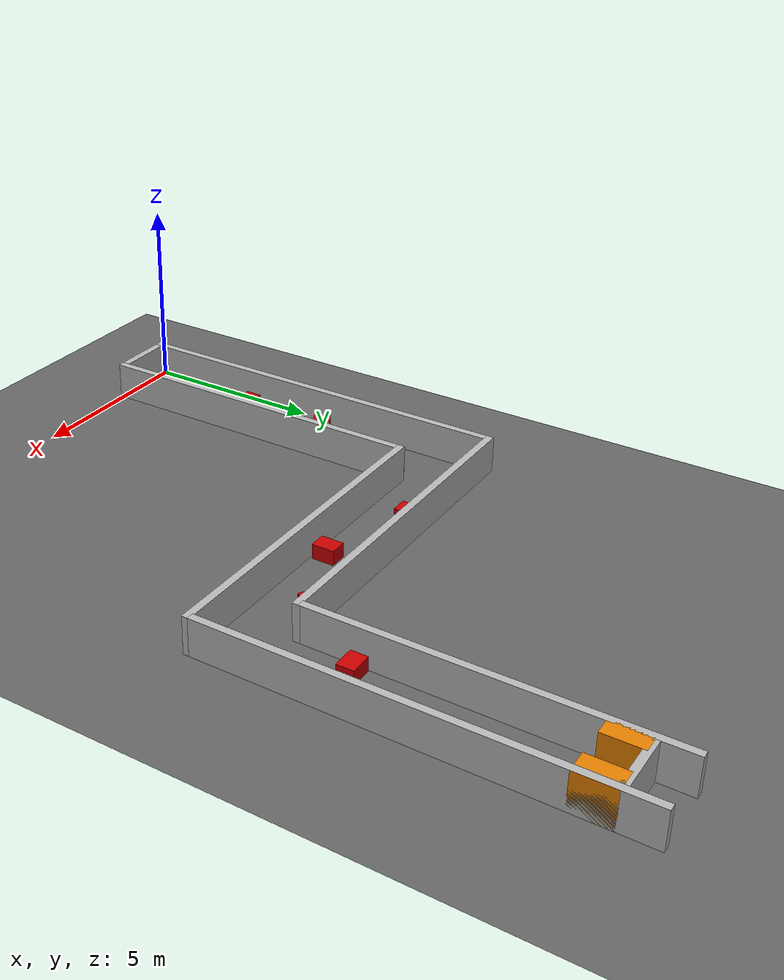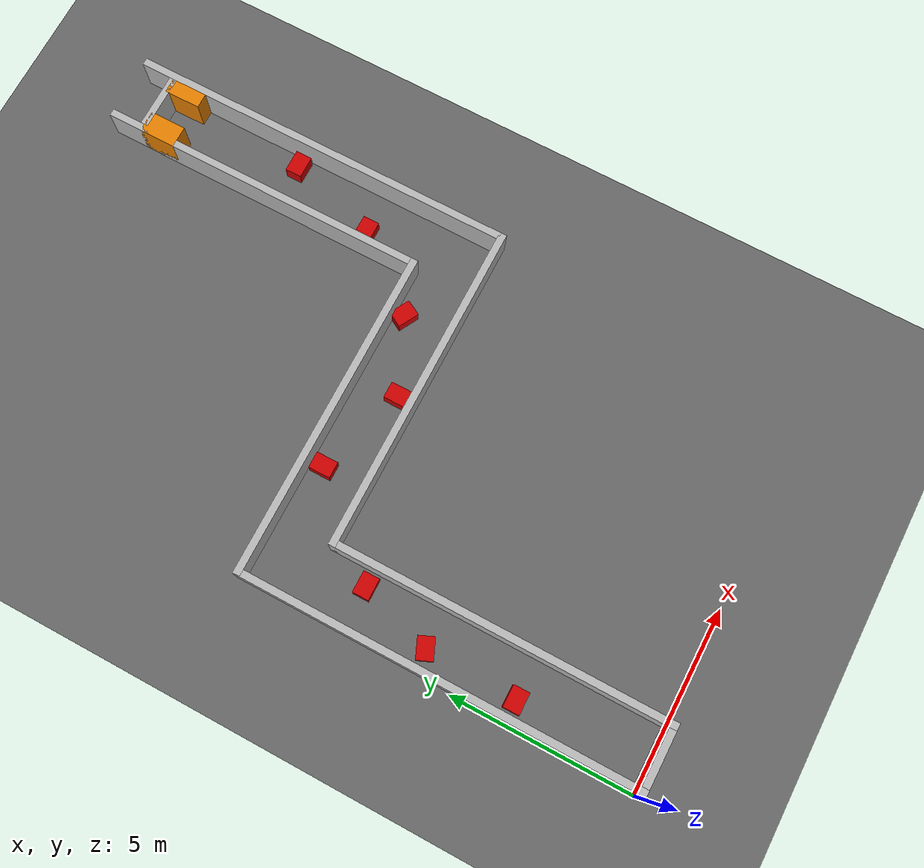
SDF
<?xml version="1.0" ?>
<sdf version="1.8">
  <world name="exam_track">
    <physics name="1ms" type="ignored">
      <max_step_size>0.001</max_step_size>
      <real_time_factor>1.0</real_time_factor>
    </physics>

    <light type="directional" name="sun">
      <cast_shadows>true</cast_shadows>
      <pose>0 0 10 0 0 0</pose>
      <diffuse>0.8 0.8 0.8 1</diffuse>
      <specular>0.2 0.2 0.2 1</specular>
      <direction>-0.5 0.1 -0.9</direction>
    </light>

    <model name="ground_plane">
      <static>true</static>
      <link name="link">
        <collision name="collision"><geometry><plane><normal>0 0 1</normal></plane></geometry></collision>
        <visual name="visual">
          <geometry><plane><normal>0 0 1</normal><size>50 50</size></plane></geometry>
          <material><ambient>0.4 0.4 0.4 1</ambient><diffuse>0.4 0.4 0.4 1</diffuse></material>
        </visual>
      </link>
    </model>

    <model name="wall_start">
      <static>true</static>
      <pose>1.0 0.0 0.5 0 0 0</pose>
      <link name="link">
        <collision name="c"><geometry><box><size>1.5 0.2 1</size></box></geometry></collision>
        <visual name="v"><geometry><box><size>1.5 0.2 1</size></box></geometry></visual>
      </link>
    </model>

    <model name="wall_end">
      <static>true</static>
      <pose>10.0 19.0 0.5 0 0 0</pose>
      <link name="link">
        <collision name="c"><geometry><box><size>1.5 0.2 1</size></box></geometry></collision>
        <visual name="v"><geometry><box><size>1.5 0.2 1</size></box></geometry></visual>
      </link>
    </model>

    <model name="wall_1_left">
      <static>true</static>
      <pose>0.15 5.425 0.5 0 0 0</pose>
      <link name="link">
        <collision name="c"><geometry><box><size>0.2 11.05 1</size></box></geometry></collision>
        <visual name="v"><geometry><box><size>0.2 11.05 1</size></box></geometry></visual>
      </link>
    </model>

    <model name="wall_1_right">
      <static>true</static>
      <pose>1.85 4.575 0.5 0 0 0</pose>
      <link name="link">
        <collision name="c"><geometry><box><size>0.2 9.35 1</size></box></geometry></collision>
        <visual name="v"><geometry><box><size>0.2 9.35 1</size></box></geometry></visual>
      </link>
    </model>

    <model name="wall_2_top">
      <static>true</static>
      <pose>4.65 10.85 0.5 0 0 0</pose>
      <link name="link">
        <collision name="c"><geometry><box><size>9.2 0.2 1</size></box></geometry></collision>
        <visual name="v"><geometry><box><size>9.2 0.2 1</size></box></geometry></visual>
      </link>
    </model>

    <model name="wall_2_bottom">
      <static>true</static>
      <pose>6.35 9.15 0.5 0 0 0</pose>
      <link name="link">
        <collision name="c"><geometry><box><size>9.2 0.2 1</size></box></geometry></collision>
        <visual name="v"><geometry><box><size>9.2 0.2 1</size></box></geometry></visual>
      </link>
    </model>

    <model name="wall_3_left">
      <static>true</static>
      <pose>9.15 15.425 0.5 0 0 0</pose>
      <link name="link">
        <collision name="c"><geometry><box><size>0.2 9.05 1</size></box></geometry></collision>
        <visual name="v"><geometry><box><size>0.2 9.05 1</size></box></geometry></visual>
      </link>
    </model>

    <model name="wall_3_right">
      <static>true</static>
      <pose>10.85 14.575 0.5 0 0 0</pose>
      <link name="link">
        <collision name="c"><geometry><box><size>0.2 10.75 1</size></box></geometry></collision>
        <visual name="v"><geometry><box><size>0.2 10.75 1</size></box></geometry></visual>
      </link>
    </model>

    <model name="obs_1_left">
      <static>true</static>
      <pose>0.65 3.5 0.2 0 0 0</pose>
      <link name="link">
        <collision name="c"><geometry><box><size>0.6 0.45 0.4</size></box></geometry></collision>
        <visual name="v"><geometry><box><size>0.6 0.45 0.4</size></box></geometry><material><ambient>0.8 0 0 1</ambient><diffuse>0.8 0 0 1</diffuse></material></visual>
      </link>
    </model>

    <model name="obs_2_center_rot">
      <static>true</static>
      <pose>0.7 6.0 0.2 0 0 0.4</pose>
      <link name="link">
        <collision name="c"><geometry><box><size>0.6 0.45 0.4</size></box></geometry></collision>
        <visual name="v"><geometry><box><size>0.6 0.45 0.4</size></box></geometry><material><ambient>0.8 0 0 1</ambient><diffuse>0.8 0 0 1</diffuse></material></visual>
      </link>
    </model>

    <model name="obs_3_right">
      <static>true</static>
      <pose>1.35 8.0 0.2 0 0 0</pose>
      <link name="link">
        <collision name="c"><geometry><box><size>0.6 0.45 0.4</size></box></geometry></collision>
        <visual name="v"><geometry><box><size>0.6 0.45 0.4</size></box></geometry><material><ambient>0.8 0 0 1</ambient><diffuse>0.8 0 0 1</diffuse></material></visual>
      </link>
    </model>

    <model name="obs_4_top">
      <static>true</static>
      <pose>3.5 10.4 0.2 0 0 1.57079</pose>
      <link name="link">
        <collision name="c"><geometry><box><size>0.6 0.45 0.4</size></box></geometry></collision>
        <visual name="v"><geometry><box><size>0.6 0.45 0.4</size></box></geometry><material><ambient>0.8 0 0 1</ambient><diffuse>0.8 0 0 1</diffuse></material></visual>
      </link>
    </model>

    <model name="obs_5_bottom">
      <static>true</static>
      <pose>6.0 9.6 0.2 0 0 1.57079</pose>
      <link name="link">
        <collision name="c"><geometry><box><size>0.6 0.45 0.4</size></box></geometry></collision>
        <visual name="v"><geometry><box><size>0.6 0.45 0.4</size></box></geometry><material><ambient>0.8 0 0 1</ambient><diffuse>0.8 0 0 1</diffuse></material></visual>
      </link>
    </model>

    <model name="obs_6_center_rot">
      <static>true</static>
      <pose>8.0 10.5 0.2 0 0 -0.5</pose>
      <link name="link">
        <collision name="c"><geometry><box><size>0.6 0.45 0.4</size></box></geometry></collision>
        <visual name="v"><geometry><box><size>0.6 0.45 0.4</size></box></geometry><material><ambient>0.8 0 0 1</ambient><diffuse>0.8 0 0 1</diffuse></material></visual>
      </link>
    </model>

    <model name="obs_7_left">
      <static>true</static>
      <pose>9.6 12.5 0.2 0 0 0</pose>
      <link name="link">
        <collision name="c"><geometry><box><size>0.6 0.45 0.4</size></box></geometry></collision>
        <visual name="v"><geometry><box><size>0.6 0.45 0.4</size></box></geometry><material><ambient>0.8 0 0 1</ambient><diffuse>0.8 0 0 1</diffuse></material></visual>
      </link>
    </model>

    <model name="obs_8_right">
      <static>true</static>
      <pose>10.4 15.0 0.2 0 0 0</pose>
      <link name="link">
        <collision name="c"><geometry><box><size>0.6 0.45 0.4</size></box></geometry></collision>
        <visual name="v"><geometry><box><size>0.6 0.45 0.4</size></box></geometry><material><ambient>0.8 0 0 1</ambient><diffuse>0.8 0 0 1</diffuse></material></visual>
      </link>
    </model>

    <model name="bottleneck_left">
      <static>true</static>
      <pose>9.35 18.5 0.5 0 0 0</pose>
      <link name="link">
        <collision name="c"><geometry><box><size>0.6 1.0 1</size></box></geometry></collision>
        <visual name="v"><geometry><box><size>0.6 1.0 1</size></box></geometry><material><ambient>0.9 0.5 0 1</ambient><diffuse>0.9 0.5 0 1</diffuse></material></visual>
      </link>
    </model>

    <model name="bottleneck_right">
      <static>true</static>
      <pose>10.65 18.5 0.5 0 0 0</pose>
      <link name="link">
        <collision name="c"><geometry><box><size>0.6 1.0 1</size></box></geometry></collision>
        <visual name="v"><geometry><box><size>0.6 1.0 1</size></box></geometry><material><ambient>0.9 0.5 0 1</ambient><diffuse>0.9 0.5 0 1</diffuse></material></visual>
      </link>
    </model>

  </world>
</sdf>
